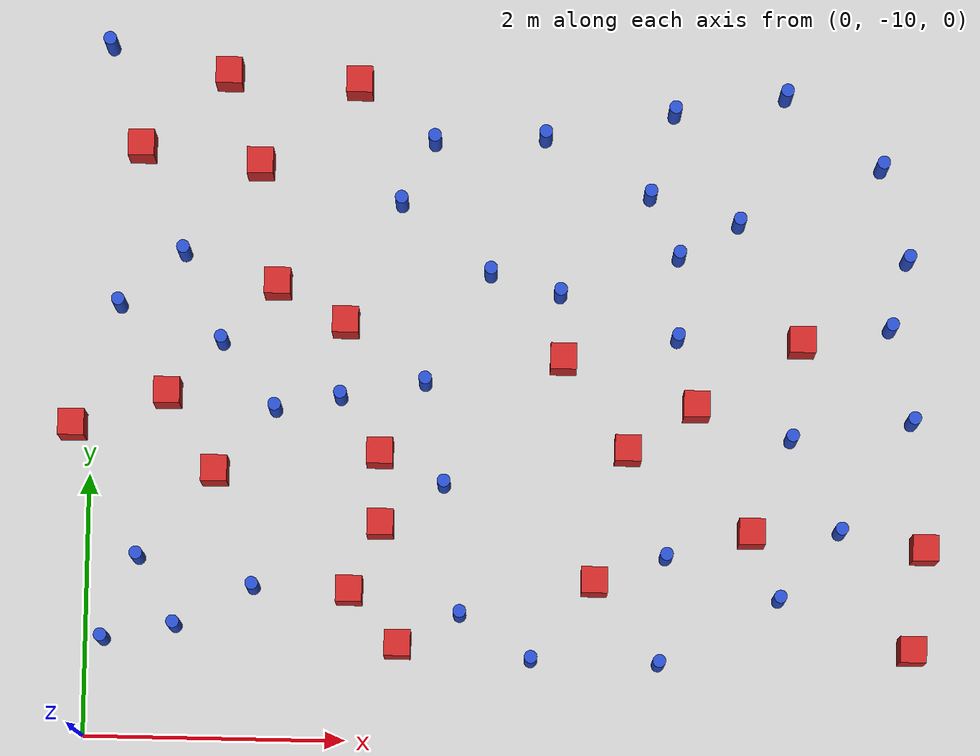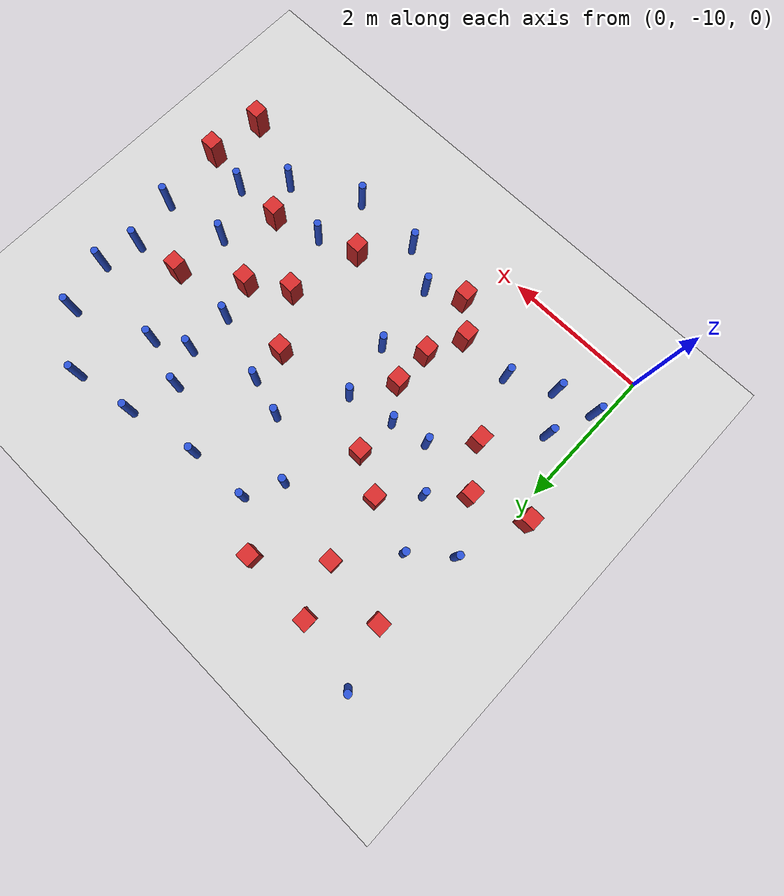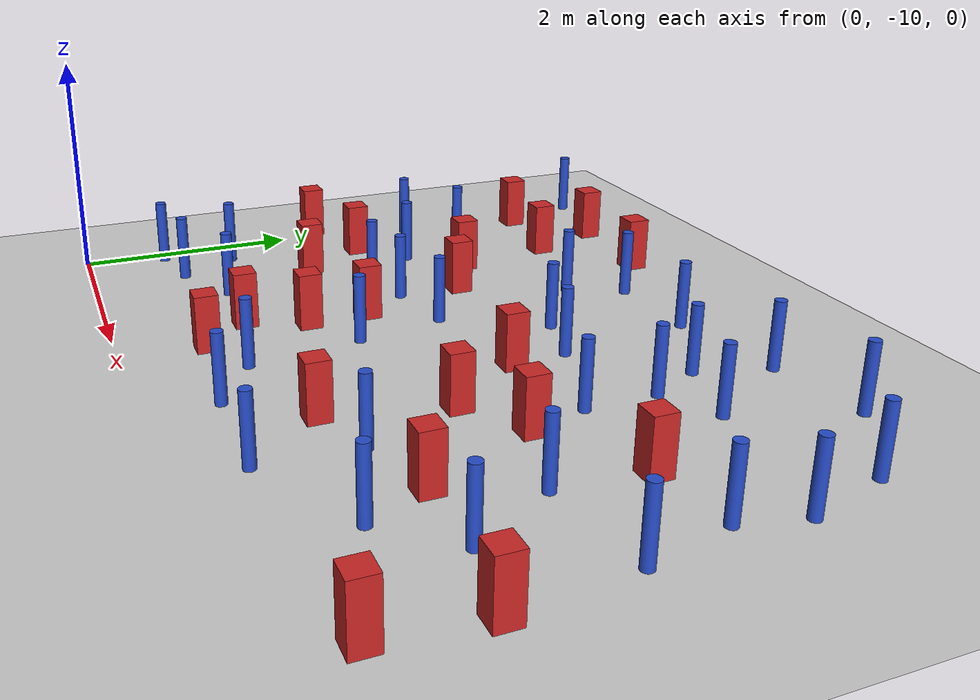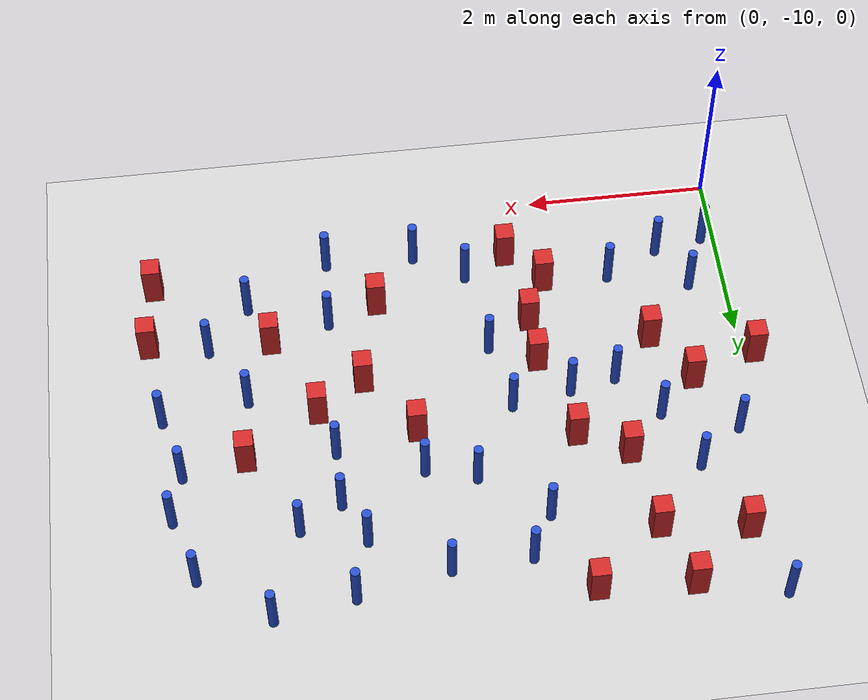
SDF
<sdf version="1.6">
 <world name="default">
  <model name="ground_plane">
   <static>1</static>
   <link name="link">
    <collision name="collision">
     <geometry><plane><normal>0 0 1</normal><size>100 100</size></plane></geometry>
     <surface><friction><ode><mu>100</mu><mu2>50</mu2></ode></friction></surface>
    </collision>
    <visual name="visual">
     <cast_shadows>0</cast_shadows>
     <geometry><plane><normal>0 0 1</normal><size>100 100</size></plane></geometry>
     <material>
      <ambient>1.0 1.0 1.0 1.0</ambient>
      <diffuse>0.8 0.8 0.8 1.0</diffuse>
      <specular>0.01 0.01 0.01 1.000000</specular>
     </material>
    </visual>
   </link>
  </model>
  <model name="pole_obstacle3">
   <static>true</static>
   <pose>0.143664078057 -9.25991751499 7.38925637345e-09 -8.47170692796e-08 1.2497676475e-08 -1.74513093035e-07</pose>
   <link name="link">
    <pose>0 0 0.3 0 -0 0</pose>
    <inertial>
     <mass>1</mass>
     <inertia><ixx>0.145833</ixx><ixy>0</ixy><ixz>0</ixz><iyy>0.145833</iyy><iyz>0</iyz><izz>0.125</izz></inertia>
    </inertial>
    <collision name="collision">
     <geometry><cylinder><radius>0.05</radius><length>.6</length></cylinder></geometry>
    </collision>
    <visual name="visual">
     <geometry><cylinder><radius>0.05</radius><length>.6</length></cylinder></geometry>
     <material>
      <script><name>Gazebo/Blue</name><uri>file://media/materials/scripts/gazebo.material</uri></script>
     </material>
    </visual>
   </link>
  </model>
  <model name="square_post_obstacle15">
   <static>true</static>
   <pose>3.60972141836 -7.06101439882 1.91545236811e-07 -7.35059704564e-06 1.12565212e-07 2.39332434364e-05</pose>
   <link name="link">
    <pose>0 0 0.25 0 -0 0</pose>
    <inertial>
     <mass>100</mass>
     <inertia>
      <ixx>0.166667</ixx>
      <ixy>0</ixy>
      <ixz>0</ixz>
      <iyy>0.166667</iyy>
      <iyz>0</iyz>
      <izz>0.166667</izz>
     </inertia>
    </inertial>
    <collision name="collision"><geometry><box><size>.2 .2 .5</size></box></geometry></collision>
    <visual name="visual">
     <geometry><box><size>.2 .2 .5</size></box></geometry>
     <material>
      <script><name>Gazebo/Red</name><uri>file://media/materials/scripts/gazebo.material</uri></script>
     </material>
    </visual>
   </link>
  </model>
  <model name="pole_obstacle17">
   <static>true</static>
   <pose>1.00166063669 -6.97437799008 7.38925637345e-09 -8.47170692799e-08 1.24976765021e-08 -1.74513093019e-07</pose>
   <link name="link">
    <pose>0 0 0.3 0 -0 0</pose>
    <inertial>
     <mass>1</mass>
     <inertia><ixx>0.145833</ixx><ixy>0</ixy><ixz>0</ixz><iyy>0.145833</iyy><iyz>0</iyz><izz>0.125</izz></inertia>
    </inertial>
    <collision name="collision">
     <geometry><cylinder><radius>0.05</radius><length>.6</length></cylinder></geometry>
    </collision>
    <visual name="visual">
     <geometry><cylinder><radius>0.05</radius><length>.6</length></cylinder></geometry>
     <material>
      <script><name>Gazebo/Blue</name><uri>file://media/materials/scripts/gazebo.material</uri></script>
     </material>
    </visual>
   </link>
  </model>
  <model name="square_post_obstacle25">
   <static>true</static>
   <pose>2.24022725447 -8.3519596345 1.91545236811e-07 -7.35059704564e-06 1.12565212e-07 2.39332434364e-05</pose>
   <link name="link">
    <pose>0 0 0.25 0 -0 0</pose>
    <inertial>
     <mass>100</mass>
     <inertia>
      <ixx>0.166667</ixx>
      <ixy>0</ixy>
      <ixz>0</ixz>
      <iyy>0.166667</iyy>
      <iyz>0</iyz>
      <izz>0.166667</izz>
     </inertia>
    </inertial>
    <collision name="collision"><geometry><box><size>.2 .2 .5</size></box></geometry></collision>
    <visual name="visual">
     <geometry><box><size>.2 .2 .5</size></box></geometry>
     <material>
      <script><name>Gazebo/Red</name><uri>file://media/materials/scripts/gazebo.material</uri></script>
     </material>
    </visual>
   </link>
  </model>
  <model name="square_post_obstacle28">
   <static>true</static>
   <pose>1.26346391116 -5.60671936324 1.91545236811e-07 -7.35059704564e-06 1.12565212e-07 2.39332434364e-05</pose>
   <link name="link">
    <pose>0 0 0.25 0 -0 0</pose>
    <inertial>
     <mass>100</mass>
     <inertia>
      <ixx>0.166667</ixx>
      <ixy>0</ixy>
      <ixz>0</ixz>
      <iyy>0.166667</iyy>
      <iyz>0</iyz>
      <izz>0.166667</izz>
     </inertia>
    </inertial>
    <collision name="collision"><geometry><box><size>.2 .2 .5</size></box></geometry></collision>
    <visual name="visual">
     <geometry><box><size>.2 .2 .5</size></box></geometry>
     <material>
      <script><name>Gazebo/Red</name><uri>file://media/materials/scripts/gazebo.material</uri></script>
     </material>
    </visual>
   </link>
  </model>
  <model name="pole_obstacle20">
   <static>true</static>
   <pose>6.28335705958 -7.49044735994 7.38925637345e-09 -8.47170692796e-08 1.24976764786e-08 -1.74513093032e-07</pose>
   <link name="link">
    <pose>0 0 0.3 0 -0 0</pose>
    <inertial>
     <mass>1</mass>
     <inertia><ixx>0.145833</ixx><ixy>0</ixy><ixz>0</ixz><iyy>0.145833</iyy><iyz>0</iyz><izz>0.125</izz></inertia>
    </inertial>
    <collision name="collision">
     <geometry><cylinder><radius>0.05</radius><length>.6</length></cylinder></geometry>
    </collision>
    <visual name="visual">
     <geometry><cylinder><radius>0.05</radius><length>.6</length></cylinder></geometry>
     <material>
      <script><name>Gazebo/Blue</name><uri>file://media/materials/scripts/gazebo.material</uri></script>
     </material>
    </visual>
   </link>
  </model>
  <model name="pole_obstacle22">
   <static>true</static>
   <pose>4.93321737904 -5.99326960375 7.38925637345e-09 -8.47170692796e-08 1.24976764786e-08 -1.74513093032e-07</pose>
   <link name="link">
    <pose>0 0 0.3 0 -0 0</pose>
    <inertial>
     <mass>1</mass>
     <inertia><ixx>0.145833</ixx><ixy>0</ixy><ixz>0</ixz><iyy>0.145833</iyy><iyz>0</iyz><izz>0.125</izz></inertia>
    </inertial>
    <collision name="collision">
     <geometry><cylinder><radius>0.05</radius><length>.6</length></cylinder></geometry>
    </collision>
    <visual name="visual">
     <geometry><cylinder><radius>0.05</radius><length>.6</length></cylinder></geometry>
     <material>
      <script><name>Gazebo/Blue</name><uri>file://media/materials/scripts/gazebo.material</uri></script>
     </material>
    </visual>
   </link>
  </model>
  <model name="pole_obstacle28">
   <static>true</static>
   <pose>6.01913289478 -5.54244667708 7.38925637345e-09 -8.47170692796e-08 1.24976764786e-08 -1.74513093032e-07</pose>
   <link name="link">
    <pose>0 0 0.3 0 -0 0</pose>
    <inertial>
     <mass>1</mass>
     <inertia><ixx>0.145833</ixx><ixy>0</ixy><ixz>0</ixz><iyy>0.145833</iyy><iyz>0</iyz><izz>0.125</izz></inertia>
    </inertial>
    <collision name="collision">
     <geometry><cylinder><radius>0.05</radius><length>.6</length></cylinder></geometry>
    </collision>
    <visual name="visual">
     <geometry><cylinder><radius>0.05</radius><length>.6</length></cylinder></geometry>
     <material>
      <script><name>Gazebo/Blue</name><uri>file://media/materials/scripts/gazebo.material</uri></script>
     </material>
    </visual>
   </link>
  </model>
  <model name="pole_obstacle32">
   <static>true</static>
   <pose>0.396536695337 -8.63443207019 7.38925637345e-09 -8.47170692796e-08 1.24976764724e-08 -1.74513093036e-07</pose>
   <link name="link">
    <pose>0 0 0.3 0 -0 0</pose>
    <inertial>
     <mass>1</mass>
     <inertia><ixx>0.145833</ixx><ixy>0</ixy><ixz>0</ixz><iyy>0.145833</iyy><iyz>0</iyz><izz>0.125</izz></inertia>
    </inertial>
    <collision name="collision">
     <geometry><cylinder><radius>0.05</radius><length>.6</length></cylinder></geometry>
    </collision>
    <visual name="visual">
     <geometry><cylinder><radius>0.05</radius><length>.6</length></cylinder></geometry>
     <material>
      <script><name>Gazebo/Blue</name><uri>file://media/materials/scripts/gazebo.material</uri></script>
     </material>
    </visual>
   </link>
  </model>
  <model name="pole_obstacle34">
   <static>true</static>
   <pose>3.04342123872 -6.41021042893 7.38925637345e-09 -8.47170692798e-08 1.24976765033e-08 -1.74513093019e-07</pose>
   <link name="link">
    <pose>0 0 0.3 0 -0 0</pose>
    <inertial>
     <mass>1</mass>
     <inertia><ixx>0.145833</ixx><ixy>0</ixy><ixz>0</ixz><iyy>0.145833</iyy><iyz>0</iyz><izz>0.125</izz></inertia>
    </inertial>
    <collision name="collision">
     <geometry><cylinder><radius>0.05</radius><length>.6</length></cylinder></geometry>
    </collision>
    <visual name="visual">
     <geometry><cylinder><radius>0.05</radius><length>.6</length></cylinder></geometry>
     <material>
      <script><name>Gazebo/Blue</name><uri>file://media/materials/scripts/gazebo.material</uri></script>
     </material>
    </visual>
   </link>
  </model>
  <model name="pole_obstacle44">
   <static>true</static>
   <pose>2.35093627663 -5.88124088309 7.38925637345e-09 -8.47170692798e-08 1.24976765033e-08 -1.74513093019e-07</pose>
   <link name="link">
    <pose>0 0 0.3 0 -0 0</pose>
    <inertial>
     <mass>1</mass>
     <inertia><ixx>0.145833</ixx><ixy>0</ixy><ixz>0</ixz><iyy>0.145833</iyy><iyz>0</iyz><izz>0.125</izz></inertia>
    </inertial>
    <collision name="collision">
     <geometry><cylinder><radius>0.05</radius><length>.6</length></cylinder></geometry>
    </collision>
    <visual name="visual">
     <geometry><cylinder><radius>0.05</radius><length>.6</length></cylinder></geometry>
     <material>
      <script><name>Gazebo/Blue</name><uri>file://media/materials/scripts/gazebo.material</uri></script>
     </material>
    </visual>
   </link>
  </model>
  <model name="square_post_obstacle42">
   <static>true</static>
   <pose>3.87727274779 -8.76113146656 1.91545236811e-07 -7.35059704564e-06 1.12565212e-07 2.39332434364e-05</pose>
   <link name="link">
    <pose>0 0 0.25 0 -0 0</pose>
    <inertial>
     <mass>100</mass>
     <inertia>
      <ixx>0.166667</ixx>
      <ixy>0</ixy>
      <ixz>0</ixz>
      <iyy>0.166667</iyy>
      <iyz>0</iyz>
      <izz>0.166667</izz>
     </inertia>
    </inertial>
    <collision name="collision"><geometry><box><size>.2 .2 .5</size></box></geometry></collision>
    <visual name="visual">
     <geometry><box><size>.2 .2 .5</size></box></geometry>
     <material>
      <script><name>Gazebo/Red</name><uri>file://media/materials/scripts/gazebo.material</uri></script>
     </material>
    </visual>
   </link>
  </model>
  <model name="square_post_obstacle43">
   <static>true</static>
   <pose>4.11460095789 -7.75209961959 1.91545236811e-07 -7.35059704564e-06 1.12565212e-07 2.39332434364e-05</pose>
   <link name="link">
    <pose>0 0 0.25 0 -0 0</pose>
    <inertial>
     <mass>100</mass>
     <inertia>
      <ixx>0.166667</ixx>
      <ixy>0</ixy>
      <ixz>0</ixz>
      <iyy>0.166667</iyy>
      <iyz>0</iyz>
      <izz>0.166667</izz>
     </inertia>
    </inertial>
    <collision name="collision"><geometry><box><size>.2 .2 .5</size></box></geometry></collision>
    <visual name="visual">
     <geometry><box><size>.2 .2 .5</size></box></geometry>
     <material>
      <script><name>Gazebo/Red</name><uri>file://media/materials/scripts/gazebo.material</uri></script>
     </material>
    </visual>
   </link>
  </model>
  <model name="square_post_obstacle55">
   <static>true</static>
   <pose>2.22431845832 -7.80889862087 1.91545236811e-07 -7.35059704564e-06 1.12565212e-07 2.39332434364e-05</pose>
   <link name="link">
    <pose>0 0 0.25 0 -0 0</pose>
    <inertial>
     <mass>100</mass>
     <inertia>
      <ixx>0.166667</ixx>
      <ixy>0</ixy>
      <ixz>0</ixz>
      <iyy>0.166667</iyy>
      <iyz>0</iyz>
      <izz>0.166667</izz>
     </inertia>
    </inertial>
    <collision name="collision"><geometry><box><size>.2 .2 .5</size></box></geometry></collision>
    <visual name="visual">
     <geometry><box><size>.2 .2 .5</size></box></geometry>
     <material>
      <script><name>Gazebo/Red</name><uri>file://media/materials/scripts/gazebo.material</uri></script>
     </material>
    </visual>
   </link>
  </model>
  <model name="square_post_obstacle65">
   <static>true</static>
   <pose>6.30228493616 -9.24018095161 1.91545236811e-07 -7.35059704564e-06 1.12565212e-07 2.39332434364e-05</pose>
   <link name="link">
    <pose>0 0 0.25 0 -0 0</pose>
    <inertial>
     <mass>100</mass>
     <inertia>
      <ixx>0.166667</ixx>
      <ixy>0</ixy>
      <ixz>0</ixz>
      <iyy>0.166667</iyy>
      <iyz>0</iyz>
      <izz>0.166667</izz>
     </inertia>
    </inertial>
    <collision name="collision"><geometry><box><size>.2 .2 .5</size></box></geometry></collision>
    <visual name="visual">
     <geometry><box><size>.2 .2 .5</size></box></geometry>
     <material>
      <script><name>Gazebo/Red</name><uri>file://media/materials/scripts/gazebo.material</uri></script>
     </material>
    </visual>
   </link>
  </model>
  <model name="pole_obstacle63">
   <static>true</static>
   <pose>4.37717472576 -9.37325461401 7.38925637345e-09 -8.471706928e-08 1.24976765081e-08 -1.74513093015e-07</pose>
   <link name="link">
    <pose>0 0 0.3 0 -0 0</pose>
    <inertial>
     <mass>1</mass>
     <inertia><ixx>0.145833</ixx><ixy>0</ixy><ixz>0</ixz><iyy>0.145833</iyy><iyz>0</iyz><izz>0.125</izz></inertia>
    </inertial>
    <collision name="collision">
     <geometry><cylinder><radius>0.05</radius><length>.6</length></cylinder></geometry>
    </collision>
    <visual name="visual">
     <geometry><cylinder><radius>0.05</radius><length>.6</length></cylinder></geometry>
     <material>
      <script><name>Gazebo/Blue</name><uri>file://media/materials/scripts/gazebo.material</uri></script>
     </material>
    </visual>
   </link>
  </model>
  <model name="square_post_obstacle70">
   <static>true</static>
   <pose>0.593927890313 -7.3809102195 1.91545236811e-07 -7.35059704564e-06 1.12565212e-07 2.39332434364e-05</pose>
   <link name="link">
    <pose>0 0 0.25 0 -0 0</pose>
    <inertial>
     <mass>100</mass>
     <inertia>
      <ixx>0.166667</ixx>
      <ixy>0</ixy>
      <ixz>0</ixz>
      <iyy>0.166667</iyy>
      <iyz>0</iyz>
      <izz>0.166667</izz>
     </inertia>
    </inertial>
    <collision name="collision"><geometry><box><size>.2 .2 .5</size></box></geometry></collision>
    <visual name="visual">
     <geometry><box><size>.2 .2 .5</size></box></geometry>
     <material>
      <script><name>Gazebo/Red</name><uri>file://media/materials/scripts/gazebo.material</uri></script>
     </material>
    </visual>
   </link>
  </model>
  <model name="pole_obstacle67">
   <static>true</static>
   <pose>3.57794327607 -6.56115837014 7.38925637345e-09 -8.47170692798e-08 1.24976765033e-08 -1.74513093019e-07</pose>
   <link name="link">
    <pose>0 0 0.3 0 -0 0</pose>
    <inertial>
     <mass>1</mass>
     <inertia><ixx>0.145833</ixx><ixy>0</ixy><ixz>0</ixz><iyy>0.145833</iyy><iyz>0</iyz><izz>0.125</izz></inertia>
    </inertial>
    <collision name="collision">
     <geometry><cylinder><radius>0.05</radius><length>.6</length></cylinder></geometry>
    </collision>
    <visual name="visual">
     <geometry><cylinder><radius>0.05</radius><length>.6</length></cylinder></geometry>
     <material>
      <script><name>Gazebo/Blue</name><uri>file://media/materials/scripts/gazebo.material</uri></script>
     </material>
    </visual>
   </link>
  </model>
  <model name="pole_obstacle75">
   <static>true</static>
   <pose>2.71764313363 -8.03949828804 7.38925637345e-09 -8.47170692795e-08 1.24976764645e-08 -1.74513093041e-07</pose>
   <link name="link">
    <pose>0 0 0.3 0 -0 0</pose>
    <inertial>
     <mass>1</mass>
     <inertia><ixx>0.145833</ixx><ixy>0</ixy><ixz>0</ixz><iyy>0.145833</iyy><iyz>0</iyz><izz>0.125</izz></inertia>
    </inertial>
    <collision name="collision">
     <geometry><cylinder><radius>0.05</radius><length>.6</length></cylinder></geometry>
    </collision>
    <visual name="visual">
     <geometry><cylinder><radius>0.05</radius><length>.6</length></cylinder></geometry>
     <material>
      <script><name>Gazebo/Blue</name><uri>file://media/materials/scripts/gazebo.material</uri></script>
     </material>
    </visual>
   </link>
  </model>
  <model name="pole_obstacle80">
   <static>true</static>
   <pose>1.91621325196 -7.38021402792 7.38925637345e-09 -8.47170692799e-08 1.24976765033e-08 -1.74513093018e-07</pose>
   <link name="link">
    <pose>0 0 0.3 0 -0 0</pose>
    <inertial>
     <mass>1</mass>
     <inertia><ixx>0.145833</ixx><ixy>0</ixy><ixz>0</ixz><iyy>0.145833</iyy><iyz>0</iyz><izz>0.125</izz></inertia>
    </inertial>
    <collision name="collision">
     <geometry><cylinder><radius>0.05</radius><length>.6</length></cylinder></geometry>
    </collision>
    <visual name="visual">
     <geometry><cylinder><radius>0.05</radius><length>.6</length></cylinder></geometry>
     <material>
      <script><name>Gazebo/Blue</name><uri>file://media/materials/scripts/gazebo.material</uri></script>
     </material>
    </visual>
   </link>
  </model>
  <model name="square_post_obstacle80">
   <static>true</static>
   <pose>4.63145836404 -7.40599338139 1.91545236811e-07 -7.35059704564e-06 1.12565212e-07 2.39332434364e-05</pose>
   <link name="link">
    <pose>0 0 0.25 0 -0 0</pose>
    <inertial>
     <mass>100</mass>
     <inertia>
      <ixx>0.166667</ixx>
      <ixy>0</ixy>
      <ixz>0</ixz>
      <iyy>0.166667</iyy>
      <iyz>0</iyz>
      <izz>0.166667</izz>
     </inertia>
    </inertial>
    <collision name="collision"><geometry><box><size>.2 .2 .5</size></box></geometry></collision>
    <visual name="visual">
     <geometry><box><size>.2 .2 .5</size></box></geometry>
     <material>
      <script><name>Gazebo/Red</name><uri>file://media/materials/scripts/gazebo.material</uri></script>
     </material>
    </visual>
   </link>
  </model>
  <model name="pole_obstacle96">
   <static>true</static>
   <pose>5.74322210052 -8.34193364121 7.38925637345e-09 -8.471706928e-08 1.24976765081e-08 -1.74513093015e-07</pose>
   <link name="link">
    <pose>0 0 0.3 0 -0 0</pose>
    <inertial>
     <mass>1</mass>
     <inertia><ixx>0.145833</ixx><ixy>0</ixy><ixz>0</ixz><iyy>0.145833</iyy><iyz>0</iyz><izz>0.125</izz></inertia>
    </inertial>
    <collision name="collision">
     <geometry><cylinder><radius>0.05</radius><length>.6</length></cylinder></geometry>
    </collision>
    <visual name="visual">
     <geometry><cylinder><radius>0.05</radius><length>.6</length></cylinder></geometry>
     <material>
      <script><name>Gazebo/Blue</name><uri>file://media/materials/scripts/gazebo.material</uri></script>
     </material>
    </visual>
   </link>
  </model>
  <model name="pole_obstacle116">
   <static>true</static>
   <pose>5.27732730329 -5.00317301167 7.38925637345e-09 -8.47170692796e-08 1.24976764786e-08 -1.74513093032e-07</pose>
   <link name="link">
    <pose>0 0 0.3 0 -0 0</pose>
    <inertial>
     <mass>1</mass>
     <inertia><ixx>0.145833</ixx><ixy>0</ixy><ixz>0</ixz><iyy>0.145833</iyy><iyz>0</iyz><izz>0.125</izz></inertia>
    </inertial>
    <collision name="collision">
     <geometry><cylinder><radius>0.05</radius><length>.6</length></cylinder></geometry>
    </collision>
    <visual name="visual">
     <geometry><cylinder><radius>0.05</radius><length>.6</length></cylinder></geometry>
     <material>
      <script><name>Gazebo/Blue</name><uri>file://media/materials/scripts/gazebo.material</uri></script>
     </material>
    </visual>
   </link>
  </model>
  <model name="pole_obstacle123">
   <static>true</static>
   <pose>1.41904585732 -7.48289032807 7.38925637345e-09 -8.47170692799e-08 1.24976765033e-08 -1.74513093018e-07</pose>
   <link name="link">
    <pose>0 0 0.3 0 -0 0</pose>
    <inertial>
     <mass>1</mass>
     <inertia><ixx>0.145833</ixx><ixy>0</ixy><ixz>0</ixz><iyy>0.145833</iyy><iyz>0</iyz><izz>0.125</izz></inertia>
    </inertial>
    <collision name="collision">
     <geometry><cylinder><radius>0.05</radius><length>.6</length></cylinder></geometry>
    </collision>
    <visual name="visual">
     <geometry><cylinder><radius>0.05</radius><length>.6</length></cylinder></geometry>
     <material>
      <script><name>Gazebo/Blue</name><uri>file://media/materials/scripts/gazebo.material</uri></script>
     </material>
    </visual>
   </link>
  </model>
  <model name="pole_obstacle125">
   <static>true</static>
   <pose>4.41971274939 -8.56156650165 7.38925637345e-09 -8.471706928e-08 1.24976765081e-08 -1.74513093015e-07</pose>
   <link name="link">
    <pose>0 0 0.3 0 -0 0</pose>
    <inertial>
     <mass>1</mass>
     <inertia><ixx>0.145833</ixx><ixy>0</ixy><ixz>0</ixz><iyy>0.145833</iyy><iyz>0</iyz><izz>0.125</izz></inertia>
    </inertial>
    <collision name="collision">
     <geometry><cylinder><radius>0.05</radius><length>.6</length></cylinder></geometry>
    </collision>
    <visual name="visual">
     <geometry><cylinder><radius>0.05</radius><length>.6</length></cylinder></geometry>
     <material>
      <script><name>Gazebo/Blue</name><uri>file://media/materials/scripts/gazebo.material</uri></script>
     </material>
    </visual>
   </link>
  </model>
  <model name="pole_obstacle128">
   <static>true</static>
   <pose>0.69682534244 -6.29494889783 7.38925637345e-09 -8.471706928e-08 1.24976765086e-08 -1.74513093015e-07</pose>
   <link name="link">
    <pose>0 0 0.3 0 -0 0</pose>
    <inertial>
     <mass>1</mass>
     <inertia><ixx>0.145833</ixx><ixy>0</ixy><ixz>0</ixz><iyy>0.145833</iyy><iyz>0</iyz><izz>0.125</izz></inertia>
    </inertial>
    <collision name="collision">
     <geometry><cylinder><radius>0.05</radius><length>.6</length></cylinder></geometry>
    </collision>
    <visual name="visual">
     <geometry><cylinder><radius>0.05</radius><length>.6</length></cylinder></geometry>
     <material>
      <script><name>Gazebo/Blue</name><uri>file://media/materials/scripts/gazebo.material</uri></script>
     </material>
    </visual>
   </link>
  </model>
  <model name="pole_obstacle135">
   <static>true</static>
   <pose>4.48028161549 -6.88716080885 7.38925637345e-09 -8.47170692796e-08 1.24976764786e-08 -1.74513093032e-07</pose>
   <link name="link">
    <pose>0 0 0.3 0 -0 0</pose>
    <inertial>
     <mass>1</mass>
     <inertia><ixx>0.145833</ixx><ixy>0</ixy><ixz>0</ixz><iyy>0.145833</iyy><iyz>0</iyz><izz>0.125</izz></inertia>
    </inertial>
    <collision name="collision">
     <geometry><cylinder><radius>0.05</radius><length>.6</length></cylinder></geometry>
    </collision>
    <visual name="visual">
     <geometry><cylinder><radius>0.05</radius><length>.6</length></cylinder></geometry>
     <material>
      <script><name>Gazebo/Blue</name><uri>file://media/materials/scripts/gazebo.material</uri></script>
     </material>
    </visual>
   </link>
  </model>
  <model name="pole_obstacle139">
   <static>true</static>
   <pose>2.85721658474 -9.02636138743 7.38925637345e-09 -8.47170692793e-08 1.24976764408e-08 -1.74513093041e-07</pose>
   <link name="link">
    <pose>0 0 0.3 0 -0 0</pose>
    <inertial>
     <mass>1</mass>
     <inertia><ixx>0.145833</ixx><ixy>0</ixy><ixz>0</ixz><iyy>0.145833</iyy><iyz>0</iyz><izz>0.125</izz></inertia>
    </inertial>
    <collision name="collision">
     <geometry><cylinder><radius>0.05</radius><length>.6</length></cylinder></geometry>
    </collision>
    <visual name="visual">
     <geometry><cylinder><radius>0.05</radius><length>.6</length></cylinder></geometry>
     <material>
      <script><name>Gazebo/Blue</name><uri>file://media/materials/scripts/gazebo.material</uri></script>
     </material>
    </visual>
   </link>
  </model>
  <model name="pole_obstacle142">
   <static>true</static>
   <pose>3.40382937772 -9.36236193928 7.38925637345e-09 -8.47170692793e-08 1.24976764408e-08 -1.74513093041e-07</pose>
   <link name="link">
    <pose>0 0 0.3 0 -0 0</pose>
    <inertial>
     <mass>1</mass>
     <inertia><ixx>0.145833</ixx><ixy>0</ixy><ixz>0</ixz><iyy>0.145833</iyy><iyz>0</iyz><izz>0.125</izz></inertia>
    </inertial>
    <collision name="collision">
     <geometry><cylinder><radius>0.05</radius><length>.6</length></cylinder></geometry>
    </collision>
    <visual name="visual">
     <geometry><cylinder><radius>0.05</radius><length>.6</length></cylinder></geometry>
     <material>
      <script><name>Gazebo/Blue</name><uri>file://media/materials/scripts/gazebo.material</uri></script>
     </material>
    </visual>
   </link>
  </model>
  <model name="pole_obstacle145">
   <static>true</static>
   <pose>6.22928546576 -6.25259907021 7.38925637345e-09 -8.47170692796e-08 1.24976764786e-08 -1.74513093032e-07</pose>
   <link name="link">
    <pose>0 0 0.3 0 -0 0</pose>
    <inertial>
     <mass>1</mass>
     <inertia><ixx>0.145833</ixx><ixy>0</ixy><ixz>0</ixz><iyy>0.145833</iyy><iyz>0</iyz><izz>0.125</izz></inertia>
    </inertial>
    <collision name="collision">
     <geometry><cylinder><radius>0.05</radius><length>.6</length></cylinder></geometry>
    </collision>
    <visual name="visual">
     <geometry><cylinder><radius>0.05</radius><length>.6</length></cylinder></geometry>
     <material>
      <script><name>Gazebo/Blue</name><uri>file://media/materials/scripts/gazebo.material</uri></script>
     </material>
    </visual>
   </link>
  </model>
  <model name="pole_obstacle147">
   <static>true</static>
   <pose>3.4414811135 -5.35430723352 7.38925637345e-09 -8.47170692798e-08 1.24976765033e-08 -1.74513093019e-07</pose>
   <link name="link">
    <pose>0 0 0.3 0 -0 0</pose>
    <inertial>
     <mass>1</mass>
     <inertia><ixx>0.145833</ixx><ixy>0</ixy><ixz>0</ixz><iyy>0.145833</iyy><iyz>0</iyz><izz>0.125</izz></inertia>
    </inertial>
    <collision name="collision">
     <geometry><cylinder><radius>0.05</radius><length>.6</length></cylinder></geometry>
    </collision>
    <visual name="visual">
     <geometry><cylinder><radius>0.05</radius><length>.6</length></cylinder></geometry>
     <material>
      <script><name>Gazebo/Blue</name><uri>file://media/materials/scripts/gazebo.material</uri></script>
     </material>
    </visual>
   </link>
  </model>
  <model name="square_post_obstacle140">
   <static>true</static>
   <pose>1.41599069623 -6.52685400833 1.91545236811e-07 -7.35059704564e-06 1.12565212e-07 2.39332434364e-05</pose>
   <link name="link">
    <pose>0 0 0.25 0 -0 0</pose>
    <inertial>
     <mass>100</mass>
     <inertia>
      <ixx>0.166667</ixx>
      <ixy>0</ixy>
      <ixz>0</ixz>
      <iyy>0.166667</iyy>
      <iyz>0</iyz>
      <izz>0.166667</izz>
     </inertia>
    </inertial>
    <collision name="collision"><geometry><box><size>.2 .2 .5</size></box></geometry></collision>
    <visual name="visual">
     <geometry><box><size>.2 .2 .5</size></box></geometry>
     <material>
      <script><name>Gazebo/Red</name><uri>file://media/materials/scripts/gazebo.material</uri></script>
     </material>
    </visual>
   </link>
  </model>
  <model name="pole_obstacle155">
   <static>true</static>
   <pose>2.55991095176 -7.25871747485 7.38925637345e-09 -8.47170692798e-08 1.24976765033e-08 -1.74513093019e-07</pose>
   <link name="link">
    <pose>0 0 0.3 0 -0 0</pose>
    <inertial>
     <mass>1</mass>
     <inertia><ixx>0.145833</ixx><ixy>0</ixy><ixz>0</ixz><iyy>0.145833</iyy><iyz>0</iyz><izz>0.125</izz></inertia>
    </inertial>
    <collision name="collision">
     <geometry><cylinder><radius>0.05</radius><length>.6</length></cylinder></geometry>
    </collision>
    <visual name="visual">
     <geometry><cylinder><radius>0.05</radius><length>.6</length></cylinder></geometry>
     <material>
      <script><name>Gazebo/Blue</name><uri>file://media/materials/scripts/gazebo.material</uri></script>
     </material>
    </visual>
   </link>
  </model>
  <model name="square_post_obstacle155">
   <static>true</static>
   <pose>1.00866995011 -4.91763219822 1.91545236811e-07 -7.35059704564e-06 1.12565212e-07 2.39332434364e-05</pose>
   <link name="link">
    <pose>0 0 0.25 0 -0 0</pose>
    <inertial>
     <mass>100</mass>
     <inertia>
      <ixx>0.166667</ixx>
      <ixy>0</ixy>
      <ixz>0</ixz>
      <iyy>0.166667</iyy>
      <iyz>0</iyz>
      <izz>0.166667</izz>
     </inertia>
    </inertial>
    <collision name="collision"><geometry><box><size>.2 .2 .5</size></box></geometry></collision>
    <visual name="visual">
     <geometry><box><size>.2 .2 .5</size></box></geometry>
     <material>
      <script><name>Gazebo/Red</name><uri>file://media/materials/scripts/gazebo.material</uri></script>
     </material>
    </visual>
   </link>
  </model>
  <model name="pole_obstacle164">
   <static>true</static>
   <pose>4.25115513372 -5.79244849213 7.38925637345e-09 -8.47170692796e-08 1.24976764786e-08 -1.74513093032e-07</pose>
   <link name="link">
    <pose>0 0 0.3 0 -0 0</pose>
    <inertial>
     <mass>1</mass>
     <inertia><ixx>0.145833</ixx><ixy>0</ixy><ixz>0</ixz><iyy>0.145833</iyy><iyz>0</iyz><izz>0.125</izz></inertia>
    </inertial>
    <collision name="collision">
     <geometry><cylinder><radius>0.05</radius><length>.6</length></cylinder></geometry>
    </collision>
    <visual name="visual">
     <geometry><cylinder><radius>0.05</radius><length>.6</length></cylinder></geometry>
     <material>
      <script><name>Gazebo/Blue</name><uri>file://media/materials/scripts/gazebo.material</uri></script>
     </material>
    </visual>
   </link>
  </model>
  <model name="square_post_obstacle165">
   <static>true</static>
   <pose>6.38701913456 -8.46659458253 1.91545236811e-07 -7.35059704564e-06 1.12565212e-07 2.39332434364e-05</pose>
   <link name="link">
    <pose>0 0 0.25 0 -0 0</pose>
    <inertial>
     <mass>100</mass>
     <inertia>
      <ixx>0.166667</ixx>
      <ixy>0</ixy>
      <ixz>0</ixz>
      <iyy>0.166667</iyy>
      <iyz>0</iyz>
      <izz>0.166667</izz>
     </inertia>
    </inertial>
    <collision name="collision"><geometry><box><size>.2 .2 .5</size></box></geometry></collision>
    <visual name="visual">
     <geometry><box><size>.2 .2 .5</size></box></geometry>
     <material>
      <script><name>Gazebo/Red</name><uri>file://media/materials/scripts/gazebo.material</uri></script>
     </material>
    </visual>
   </link>
  </model>
  <model name="pole_obstacle177">
   <static>true</static>
   <pose>5.28693717808 -8.86731365807 7.38925637345e-09 -8.471706928e-08 1.24976765081e-08 -1.74513093015e-07</pose>
   <link name="link">
    <pose>0 0 0.3 0 -0 0</pose>
    <inertial>
     <mass>1</mass>
     <inertia><ixx>0.145833</ixx><ixy>0</ixy><ixz>0</ixz><iyy>0.145833</iyy><iyz>0</iyz><izz>0.125</izz></inertia>
    </inertial>
    <collision name="collision">
     <geometry><cylinder><radius>0.05</radius><length>.6</length></cylinder></geometry>
    </collision>
    <visual name="visual">
     <geometry><cylinder><radius>0.05</radius><length>.6</length></cylinder></geometry>
     <material>
      <script><name>Gazebo/Blue</name><uri>file://media/materials/scripts/gazebo.material</uri></script>
     </material>
    </visual>
   </link>
  </model>
  <model name="square_post_obstacle169">
   <static>true</static>
   <pose>2.00843890895 -4.96808481477 1.91545236811e-07 -7.35059704564e-06 1.12565212e-07 2.39332434364e-05</pose>
   <link name="link">
    <pose>0 0 0.25 0 -0 0</pose>
    <inertial>
     <mass>100</mass>
     <inertia>
      <ixx>0.166667</ixx>
      <ixy>0</ixy>
      <ixz>0</ixz>
      <iyy>0.166667</iyy>
      <iyz>0</iyz>
      <izz>0.166667</izz>
     </inertia>
    </inertial>
    <collision name="collision"><geometry><box><size>.2 .2 .5</size></box></geometry></collision>
    <visual name="visual">
     <geometry><box><size>.2 .2 .5</size></box></geometry>
     <material>
      <script><name>Gazebo/Red</name><uri>file://media/materials/scripts/gazebo.material</uri></script>
     </material>
    </visual>
   </link>
  </model>
  <model name="pole_obstacle179">
   <static>true</static>
   <pose>0.101209109898 -4.70794285006 7.38925637345e-09 -8.47170692799e-08 1.24976765062e-08 -1.74513093018e-07</pose>
   <link name="link">
    <pose>0 0 0.3 0 -0 0</pose>
    <inertial>
     <mass>1</mass>
     <inertia><ixx>0.145833</ixx><ixy>0</ixy><ixz>0</ixz><iyy>0.145833</iyy><iyz>0</iyz><izz>0.125</izz></inertia>
    </inertial>
    <collision name="collision">
     <geometry><cylinder><radius>0.05</radius><length>.6</length></cylinder></geometry>
    </collision>
    <visual name="visual">
     <geometry><cylinder><radius>0.05</radius><length>.6</length></cylinder></geometry>
     <material>
      <script><name>Gazebo/Blue</name><uri>file://media/materials/scripts/gazebo.material</uri></script>
     </material>
    </visual>
   </link>
  </model>
  <model name="pole_obstacle180">
   <static>true</static>
   <pose>5.35998269492 -7.64074496752 7.38925637345e-09 -8.47170692796e-08 1.24976764786e-08 -1.74513093032e-07</pose>
   <link name="link">
    <pose>0 0 0.3 0 -0 0</pose>
    <inertial>
     <mass>1</mass>
     <inertia><ixx>0.145833</ixx><ixy>0</ixy><ixz>0</ixz><iyy>0.145833</iyy><iyz>0</iyz><izz>0.125</izz></inertia>
    </inertial>
    <collision name="collision">
     <geometry><cylinder><radius>0.05</radius><length>.6</length></cylinder></geometry>
    </collision>
    <visual name="visual">
     <geometry><cylinder><radius>0.05</radius><length>.6</length></cylinder></geometry>
     <material>
      <script><name>Gazebo/Blue</name><uri>file://media/materials/scripts/gazebo.material</uri></script>
     </material>
    </visual>
   </link>
  </model>
  <model name="square_post_obstacle170">
   <static>true</static>
   <pose>1.94144038553 -6.81303335792 1.91545236811e-07 -7.35059704564e-06 1.12565212e-07 2.39332434364e-05</pose>
   <link name="link">
    <pose>0 0 0.25 0 -0 0</pose>
    <inertial>
     <mass>100</mass>
     <inertia>
      <ixx>0.166667</ixx>
      <ixy>0</ixy>
      <ixz>0</ixz>
      <iyy>0.166667</iyy>
      <iyz>0</iyz>
      <izz>0.166667</izz>
     </inertia>
    </inertial>
    <collision name="collision"><geometry><box><size>.2 .2 .5</size></box></geometry></collision>
    <visual name="visual">
     <geometry><box><size>.2 .2 .5</size></box></geometry>
     <material>
      <script><name>Gazebo/Red</name><uri>file://media/materials/scripts/gazebo.material</uri></script>
     </material>
    </visual>
   </link>
  </model>
  <model name="pole_obstacle185">
   <static>true</static>
   <pose>6.10443632424 -6.77841831604 7.38925637345e-09 -8.47170692796e-08 1.24976764786e-08 -1.74513093032e-07</pose>
   <link name="link">
    <pose>0 0 0.3 0 -0 0</pose>
    <inertial>
     <mass>1</mass>
     <inertia><ixx>0.145833</ixx><ixy>0</ixy><ixz>0</ixz><iyy>0.145833</iyy><iyz>0</iyz><izz>0.125</izz></inertia>
    </inertial>
    <collision name="collision">
     <geometry><cylinder><radius>0.05</radius><length>.6</length></cylinder></geometry>
    </collision>
    <visual name="visual">
     <geometry><cylinder><radius>0.05</radius><length>.6</length></cylinder></geometry>
     <material>
      <script><name>Gazebo/Blue</name><uri>file://media/materials/scripts/gazebo.material</uri></script>
     </material>
    </visual>
   </link>
  </model>
  <model name="pole_obstacle186">
   <static>true</static>
   <pose>0.688477782004 -9.14913523395 7.38925637345e-09 -8.47170692797e-08 1.249767648e-08 -1.74513093032e-07</pose>
   <link name="link">
    <pose>0 0 0.3 0 -0 0</pose>
    <inertial>
     <mass>1</mass>
     <inertia><ixx>0.145833</ixx><ixy>0</ixy><ixz>0</ixz><iyy>0.145833</iyy><iyz>0</iyz><izz>0.125</izz></inertia>
    </inertial>
    <collision name="collision">
     <geometry><cylinder><radius>0.05</radius><length>.6</length></cylinder></geometry>
    </collision>
    <visual name="visual">
     <geometry><cylinder><radius>0.05</radius><length>.6</length></cylinder></geometry>
     <material>
      <script><name>Gazebo/Blue</name><uri>file://media/materials/scripts/gazebo.material</uri></script>
     </material>
    </visual>
   </link>
  </model>
  <model name="square_post_obstacle177">
   <static>true</static>
   <pose>0.967257986299 -7.96901707503 1.91545236811e-07 -7.35059704564e-06 1.12565212e-07 2.39332434364e-05</pose>
   <link name="link">
    <pose>0 0 0.25 0 -0 0</pose>
    <inertial>
     <mass>100</mass>
     <inertia>
      <ixx>0.166667</ixx>
      <ixy>0</ixy>
      <ixz>0</ixz>
      <iyy>0.166667</iyy>
      <iyz>0</iyz>
      <izz>0.166667</izz>
     </inertia>
    </inertial>
    <collision name="collision"><geometry><box><size>.2 .2 .5</size></box></geometry></collision>
    <visual name="visual">
     <geometry><box><size>.2 .2 .5</size></box></geometry>
     <material>
      <script><name>Gazebo/Red</name><uri>file://media/materials/scripts/gazebo.material</uri></script>
     </material>
    </visual>
   </link>
  </model>
  <model name="square_post_obstacle179">
   <static>true</static>
   <pose>-0.127024923231 -7.63971011542 1.91545236811e-07 -7.35059704564e-06 1.12565212e-07 2.39332434364e-05</pose>
   <link name="link">
    <pose>0 0 0.25 0 -0 0</pose>
    <inertial>
     <mass>100</mass>
     <inertia>
      <ixx>0.166667</ixx>
      <ixy>0</ixy>
      <ixz>0</ixz>
      <iyy>0.166667</iyy>
      <iyz>0</iyz>
      <izz>0.166667</izz>
     </inertia>
    </inertial>
    <collision name="collision"><geometry><box><size>.2 .2 .5</size></box></geometry></collision>
    <visual name="visual">
     <geometry><box><size>.2 .2 .5</size></box></geometry>
     <material>
      <script><name>Gazebo/Red</name><uri>file://media/materials/scripts/gazebo.material</uri></script>
     </material>
    </visual>
   </link>
  </model>
  <model name="square_post_obstacle187">
   <static>true</static>
   <pose>5.06846130144 -8.36890510961 1.91545236811e-07 -7.35059704564e-06 1.12565212e-07 2.39332434364e-05</pose>
   <link name="link">
    <pose>0 0 0.25 0 -0 0</pose>
    <inertial>
     <mass>100</mass>
     <inertia>
      <ixx>0.166667</ixx>
      <ixy>0</ixy>
      <ixz>0</ixz>
      <iyy>0.166667</iyy>
      <iyz>0</iyz>
      <izz>0.166667</izz>
     </inertia>
    </inertial>
    <collision name="collision"><geometry><box><size>.2 .2 .5</size></box></geometry></collision>
    <visual name="visual">
     <geometry><box><size>.2 .2 .5</size></box></geometry>
     <material>
      <script><name>Gazebo/Red</name><uri>file://media/materials/scripts/gazebo.material</uri></script>
     </material>
    </visual>
   </link>
  </model>
  <model name="square_post_obstacle189">
   <static>true</static>
   <pose>5.4290628854 -6.89789395556 1.91545236811e-07 -7.35059704564e-06 1.12565212e-07 2.39332434364e-05</pose>
   <link name="link">
    <pose>0 0 0.25 0 -0 0</pose>
    <inertial>
     <mass>100</mass>
     <inertia>
      <ixx>0.166667</ixx>
      <ixy>0</ixy>
      <ixz>0</ixz>
      <iyy>0.166667</iyy>
      <iyz>0</iyz>
      <izz>0.166667</izz>
     </inertia>
    </inertial>
    <collision name="collision"><geometry><box><size>.2 .2 .5</size></box></geometry></collision>
    <visual name="visual">
     <geometry><box><size>.2 .2 .5</size></box></geometry>
     <material>
      <script><name>Gazebo/Red</name><uri>file://media/materials/scripts/gazebo.material</uri></script>
     </material>
    </visual>
   </link>
  </model>
  <model name="square_post_obstacle192">
   <static>true</static>
   <pose>0.352512990074 -5.48843969625 1.91545236811e-07 -7.35059704564e-06 1.12565212e-07 2.39332434364e-05</pose>
   <link name="link">
    <pose>0 0 0.25 0 -0 0</pose>
    <inertial>
     <mass>100</mass>
     <inertia>
      <ixx>0.166667</ixx>
      <ixy>0</ixy>
      <ixz>0</ixz>
      <iyy>0.166667</iyy>
      <iyz>0</iyz>
      <izz>0.166667</izz>
     </inertia>
    </inertial>
    <collision name="collision"><geometry><box><size>.2 .2 .5</size></box></geometry></collision>
    <visual name="visual">
     <geometry><box><size>.2 .2 .5</size></box></geometry>
     <material>
      <script><name>Gazebo/Red</name><uri>file://media/materials/scripts/gazebo.material</uri></script>
     </material>
    </visual>
   </link>
  </model>
  <model name="pole_obstacle193">
   <static>true</static>
   <pose>1.27894063481 -8.84715580919 7.38925637345e-09 -8.47170692798e-08 1.24976764881e-08 -1.74513093027e-07</pose>
   <link name="link">
    <pose>0 0 0.3 0 -0 0</pose>
    <inertial>
     <mass>1</mass>
     <inertia><ixx>0.145833</ixx><ixy>0</ixy><ixz>0</ixz><iyy>0.145833</iyy><iyz>0</iyz><izz>0.125</izz></inertia>
    </inertial>
    <collision name="collision">
     <geometry><cylinder><radius>0.05</radius><length>.6</length></cylinder></geometry>
    </collision>
    <visual name="visual">
     <geometry><cylinder><radius>0.05</radius><length>.6</length></cylinder></geometry>
     <material>
      <script><name>Gazebo/Blue</name><uri>file://media/materials/scripts/gazebo.material</uri></script>
     </material>
    </visual>
   </link>
  </model>
  <model name="pole_obstacle194">
   <static>true</static>
   <pose>4.42730214436 -5.1497096899 7.38925637345e-09 -8.47170692796e-08 1.24976764786e-08 -1.74513093032e-07</pose>
   <link name="link">
    <pose>0 0 0.3 0 -0 0</pose>
    <inertial>
     <mass>1</mass>
     <inertia><ixx>0.145833</ixx><ixy>0</ixy><ixz>0</ixz><iyy>0.145833</iyy><iyz>0</iyz><izz>0.125</izz></inertia>
    </inertial>
    <collision name="collision">
     <geometry><cylinder><radius>0.05</radius><length>.6</length></cylinder></geometry>
    </collision>
    <visual name="visual">
     <geometry><cylinder><radius>0.05</radius><length>.6</length></cylinder></geometry>
     <material>
      <script><name>Gazebo/Blue</name><uri>file://media/materials/scripts/gazebo.material</uri></script>
     </material>
    </visual>
   </link>
  </model>
  <model name="pole_obstacle199">
   <static>true</static>
   <pose>0.212079058648 -6.70414601036 7.38925637345e-09 -8.471706928e-08 1.24976765124e-08 -1.74513093014e-07</pose>
   <link name="link">
    <pose>0 0 0.3 0 -0 0</pose>
    <inertial>
     <mass>1</mass>
     <inertia><ixx>0.145833</ixx><ixy>0</ixy><ixz>0</ixz><iyy>0.145833</iyy><iyz>0</iyz><izz>0.125</izz></inertia>
    </inertial>
    <collision name="collision">
     <geometry><cylinder><radius>0.05</radius><length>.6</length></cylinder></geometry>
    </collision>
    <visual name="visual">
     <geometry><cylinder><radius>0.05</radius><length>.6</length></cylinder></geometry>
     <material>
      <script><name>Gazebo/Blue</name><uri>file://media/materials/scripts/gazebo.material</uri></script>
     </material>
    </visual>
   </link>
  </model>
  <model name="pole_obstacle200">
   <static>true</static>
   <pose>2.59489863183 -5.40160125393 7.38925637345e-09 -8.47170692798e-08 1.24976765033e-08 -1.74513093019e-07</pose>
   <link name="link">
    <pose>0 0 0.3 0 -0 0</pose>
    <inertial>
     <mass>1</mass>
     <inertia><ixx>0.145833</ixx><ixy>0</ixy><ixz>0</ixz><iyy>0.145833</iyy><iyz>0</iyz><izz>0.125</izz></inertia>
    </inertial>
    <collision name="collision">
     <geometry><cylinder><radius>0.05</radius><length>.6</length></cylinder></geometry>
    </collision>
    <visual name="visual">
     <geometry><cylinder><radius>0.05</radius><length>.6</length></cylinder></geometry>
     <material>
      <script><name>Gazebo/Blue</name><uri>file://media/materials/scripts/gazebo.material</uri></script>
     </material>
    </visual>
   </link>
  </model>
  <model name="pole_obstacle201">
   <static>true</static>
   <pose>4.47923165637 -6.2568104073 7.38925637345e-09 -8.47170692796e-08 1.24976764786e-08 -1.74513093032e-07</pose>
   <link name="link">
    <pose>0 0 0.3 0 -0 0</pose>
    <inertial>
     <mass>1</mass>
     <inertia><ixx>0.145833</ixx><ixy>0</ixy><ixz>0</ixz><iyy>0.145833</iyy><iyz>0</iyz><izz>0.125</izz></inertia>
    </inertial>
    <collision name="collision">
     <geometry><cylinder><radius>0.05</radius><length>.6</length></cylinder></geometry>
    </collision>
    <visual name="visual">
     <geometry><cylinder><radius>0.05</radius><length>.6</length></cylinder></geometry>
     <material>
      <script><name>Gazebo/Blue</name><uri>file://media/materials/scripts/gazebo.material</uri></script>
     </material>
    </visual>
   </link>
  </model>
  <model name="square_post_obstacle207">
   <static>true</static>
   <pose>2.01269018722 -8.86455042261 1.91545236811e-07 -7.35059704564e-06 1.12565212e-07 2.39332434364e-05</pose>
   <link name="link">
    <pose>0 0 0.25 0 -0 0</pose>
    <inertial>
     <mass>100</mass>
     <inertia>
      <ixx>0.166667</ixx>
      <ixy>0</ixy>
      <ixz>0</ixz>
      <iyy>0.166667</iyy>
      <iyz>0</iyz>
      <izz>0.166667</izz>
     </inertia>
    </inertial>
    <collision name="collision"><geometry><box><size>.2 .2 .5</size></box></geometry></collision>
    <visual name="visual">
     <geometry><box><size>.2 .2 .5</size></box></geometry>
     <material>
      <script><name>Gazebo/Red</name><uri>file://media/materials/scripts/gazebo.material</uri></script>
     </material>
    </visual>
   </link>
  </model>
  <model name="square_post_obstacle213">
   <static>true</static>
   <pose>2.38938840919 -9.26781022481 1.91545236811e-07 -7.35059704564e-06 1.12565212e-07 2.39332434364e-05</pose>
   <link name="link">
    <pose>0 0 0.25 0 -0 0</pose>
    <inertial>
     <mass>100</mass>
     <inertia>
      <ixx>0.166667</ixx>
      <ixy>0</ixy>
      <ixz>0</ixz>
      <iyy>0.166667</iyy>
      <iyz>0</iyz>
      <izz>0.166667</izz>
     </inertia>
    </inertial>
    <collision name="collision"><geometry><box><size>.2 .2 .5</size></box></geometry></collision>
    <visual name="visual">
     <geometry><box><size>.2 .2 .5</size></box></geometry>
     <material>
      <script><name>Gazebo/Red</name><uri>file://media/materials/scripts/gazebo.material</uri></script>
     </material>
    </visual>
   </link>
  </model>
 </world>
</sdf>
